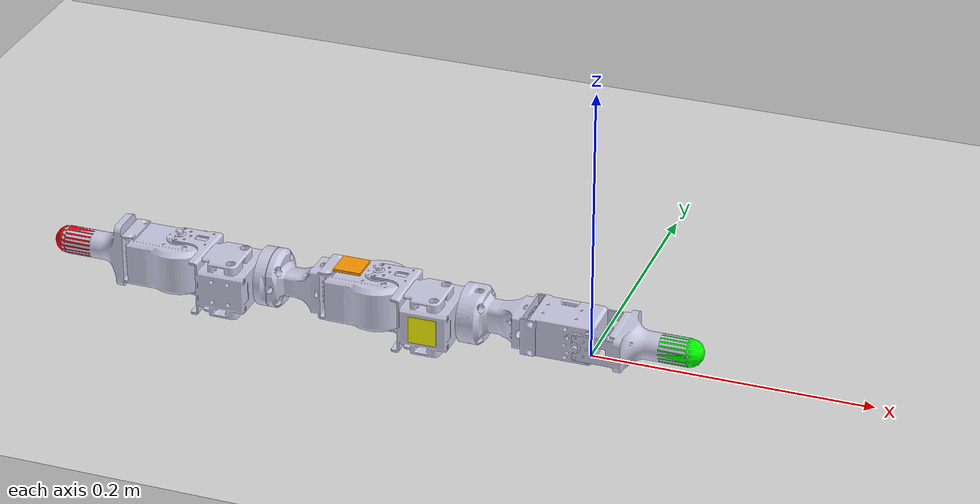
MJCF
<mujoco model="wriggly">

  <include file = "scenes/white_scene.xml"/>
  <!--include file = "scenes/dkitty_scene.xml"-->
  <include file = "assets/wriggly_dependencies.xml"/>
  <compiler meshdir="."/>
  <include file = "assets/wriggly_chain_colored.xml"/>

</mujoco>

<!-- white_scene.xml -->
<mujoco>

  <asset>
    <!-- Textures -->
    <texture type="skybox" builtin="gradient" rgb1="0.3 0.5 0.7" rgb2="0 0 0" width="512" height="3072"/>
    <texture type="2d" name="groundplane" builtin="checker" mark="edge" rgb1="0.9 0.9 0.9" rgb2="0.8 0.8 0.8" markrgb="0.8 0.8 0.8" width="300" height="300"/>
    <!-- Materials -->
    <material name="groundplane" texture="groundplane" texuniform="true" texrepeat="5 5" reflectance="0.2"/>
  </asset>

  <worldbody>
    <!-- Floor -->
    <geom name="floor" condim="3" friction="0.2 0.005 0.0001" size="0 0 0.05" type="plane" material="groundplane"/>
    <!-- Light -->
    <light name="ceiling" pos="0 0 2" dir="0 0 -1" directional="true"/>
    <!-- Cameras -->
    <camera name="target_from_origin" pos="0 0 1.25" xyaxes="0 -1 0 1 0 0"/>
    <camera name = "free" pos="1.583 -1.302 2.903" xyaxes="0.762 0.648 0.000 -0.527 0.620 0.581"/>
    <camera pos="-0.075 -2.030 2.293" xyaxes="1.000 -0.000 0.000 0.000 0.707 0.707"/>
    <camera pos="-0.294 -2.675 2.675" xyaxes="1.000 -0.000 0.000 0.000 0.707 0.707"/>
    <camera pos="-0.077 -2.402 2.654" xyaxes="1.000 -0.000 0.000 0.000 0.707 0.707"/>
    <camera pos="-1.490 0.003 2.513" xyaxes="0.003 -1.000 0.000 0.857 0.003 0.515"/>

  </worldbody>

</mujoco>

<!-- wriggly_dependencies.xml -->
<mujoco>
  <compiler angle="radian" autolimits="true" />
  <default>
      <position forcelimited="true" forcerange="-1 1"/>
      <geom solref=".002 10" solimp="0.9 0.95 0.001 0.5 2"/>

  </default>
  <asset>
    <mesh name="base_link"        file="../wriggly_mujoco/meshes/base_link.STL"/>
    <mesh name="green_leg_holder" file="../wriggly_mujoco/meshes/green_leg_holder.STL"/>
    <mesh name="central_link"     file="../wriggly_mujoco/meshes/central_link.STL"/>
    <mesh name="red_central"      file="../wriggly_mujoco/meshes/red_central.STL"/>
    <mesh name="red_leg_holder"   file="../wriggly_mujoco/meshes/red_leg_holder.STL"/>
    <mesh name="red_leg"          file="../wriggly_mujoco/meshes/red_leg.STL"/>
  </asset>
  <actuator>
    <position name="ACT0" kp="5" joint="Green_Leg_Final_Joint"   ctrlrange="-1.57 1.57"/>
    <position name="ACT1" kp="5" joint="Green_Leg_Central_Joint" ctrlrange="-3.14 3.14"/>
    <position name="ACT2" kp="5" joint="Red_Leg_Central_Joint"   ctrlrange="-1.57 1.57"/>
    <position name="ACT3" kp="5" joint="Red_Knee"                ctrlrange="-3.14 3.14"/>
    <position name="ACT4" kp="5" joint="Red_Leg_Final_Joint"     ctrlrange="-1.57 1.57"/>
  </actuator>
  <sensor>
    <subtreelinvel name="central_velsensor" body="Central_Link"/>

    <jointpos name="ACT0_pos_sensor" joint="Green_Leg_Final_Joint"/>
    <jointpos name="ACT1_pos_sensor" joint="Green_Leg_Central_Joint"/>
    <jointpos name="ACT2_pos_sensor" joint="Red_Leg_Central_Joint"/>
    <jointpos name="ACT3_pos_sensor" joint="Red_Knee"/>
    <jointpos name="ACT4_pos_sensor" joint="Red_Leg_Final_Joint"/>

    <jointvel name="ACT0_velocity_sensor" joint="Green_Leg_Final_Joint"/>
    <jointvel name="ACT1_velocity_sensor" joint="Green_Leg_Central_Joint"/>
    <jointvel name="ACT2_velocity_sensor" joint="Red_Leg_Central_Joint"/>
    <jointvel name="ACT3_velocity_sensor" joint="Red_Knee"/>
    <jointvel name="ACT4_velocity_sensor" joint="Red_Leg_Final_Joint"/>
  </sensor>
</mujoco>

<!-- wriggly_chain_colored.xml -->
<mujoco>
  <worldbody>
    <!-- Green Leg -->
    <body name="green_leg" gravcomp="0" pos="0 0 0.027">
        <inertial pos="0.0 -0.0 0.0" quat="0.5 -0.5 0.5 -0.5" mass="0.025" diaginertia="5.02495112065811E-06 7.84051273383468E-06 1.03414373246399E-05"/>
        <joint name="free" pos="0 0 0" type="free"/>
        <geom name = "green_leg" pos = "-0.3235 0.23065 0" type="mesh" rgba="0.8 0.8 0.9 1" mesh="base_link"/>
        <site name="green_tracker" type="capsule" rgba="0 1 0 1" zaxis="1 0 0" pos="0.065 -0.017 0" size="0.01 0.01"/>
        <!-- Green Leg Holder -->
        <body name="Green_Leg_Holder" pos="0.0 -0.0 0" quat="0.5 -0.5 0.5 -0.5" gravcomp="0">
          <inertial pos="0.0172732 -1.71313e-05 -0.0312874" quat="0.707094 0.00279184 0.00136492 0.707112" mass="0.101" diaginertia="1.71483e-05 1.52784e-05 1.18772e-05"/>
          <joint name="Green_Leg_Final_Joint" pos="0 0 0" axis="1 0 0" damping=".5" armature="0.001"/>
          <geom name = "green_leg_holder" pos = "0. 0 0" type="mesh" rgba="0.8 0.8 0.9 1" mesh="green_leg_holder"/>

          <!-- Central Link -->
          <body name="Central_Link" pos="0.017 0 -0.1045" quat="0.707107 0 0 0.707107" gravcomp="0">
            <inertial pos="9.37688e-10 -0.0119557 -0.00143737" quat="0.707745 0.706468 -1.73858e-06 1.74172e-06" mass="0.091" diaginertia="1.40798e-05 1.31645e-05 8.83029e-06"/>
            <joint name="Green_Leg_Central_Joint" pos="0 0 0" axis="0 0 1" damping=".5" armature="0.001"/>
            <geom name="central_link" type="mesh" rgba="0.8 0.8 0.9 1" mesh="central_link"/>
            <site name="center_left" type="box" size="0.01 0.001 0.01" pos="0.0 -0.035 0.0" rgba="1 1 0 1"/>
            <site name="center_right" type="box" size="0.01 0.001 0.01" pos="0 0.0125 0.0" rgba="0.5 0 0.5 1"/>

            <!-- Red Leg Central Link -->
            <body name="Red_Leg_Central_Link" pos="0 0 -0.04515" quat="0.5 0.5 0.5 0.5" gravcomp="0">
              <inertial pos="-0.000634684 -0.0270609 -0.000240499" quat="0.707212 0.704458 -0.0410108 -0.0436829" mass="0.113" diaginertia="2.05457e-05 1.98685e-05 1.50592e-05"/>
              <joint name="Red_Leg_Central_Joint" pos="0 0 0" axis="0 0 1" damping=".5" armature="0.001"/>
              <geom name="red_leg_central_link" type="mesh" rgba="0.8 0.8 0.9 1" mesh="red_central"/>
              <site name="center_bot" type="box" size="0.01 0.01 0.001" pos="0.0 -0.02 0.02" rgba="0 0 1 1"/>
              <site name="center_top" type="box" size="0.01 0.01 0.001" pos="0 -0.02 -0.02" rgba="1 0.6 0 1"/>
              <!-- Red Leg Holder -->
              <body name="Red_Leg_Holder" pos="0 -0.10485 0" quat="-0.5 0.5 0.5 0.5" gravcomp="0">
                <inertial pos="9.37688e-10 -0.0119557 -0.00143737" quat="0.707745 0.706468 -1.73858e-06 1.74172e-06" mass="0.091" diaginertia="1.40798e-05 1.31645e-05 8.83029e-06"/>
                <joint name="Red_Knee" pos="0 0 0" axis="0 0 1" damping=".5" armature="0.001"/>
                <geom name="red_leg_holder" type="mesh" rgba="0.8 0.8 0.9 1" mesh="red_leg_holder"/>

                <!-- Red Leg -->
                <body name="Red_Leg" pos="0 0 -0.045" quat="0.5 -0.5 0.5 -0.5" gravcomp="0">
                  <inertial pos="0.00101128 0.025027 -0.000247357" quat="0.705699 0.707278 -0.0298534 -0.0292677" mass="0.112" diaginertia="2.31293e-05 2.08201e-05 1.20376e-05"/>
                  <joint name="Red_Leg_Final_Joint" pos="0 0 0" axis="0 0 1" damping=".5" armature="0.001"/>
                  <geom name="red_leg" type="mesh" rgba="0.8 0.8 0.9 1" mesh="red_leg"/>
                  <site name="red_tracker" type="capsule" rgba="1 0 0 1" zaxis="0 1 0" pos="0.0 0.077 0" size="0.01 0.01"/>

                </body>
              </body>
            </body>
          </body>
        </body>
    </body>
  </worldbody>
</mujoco>
